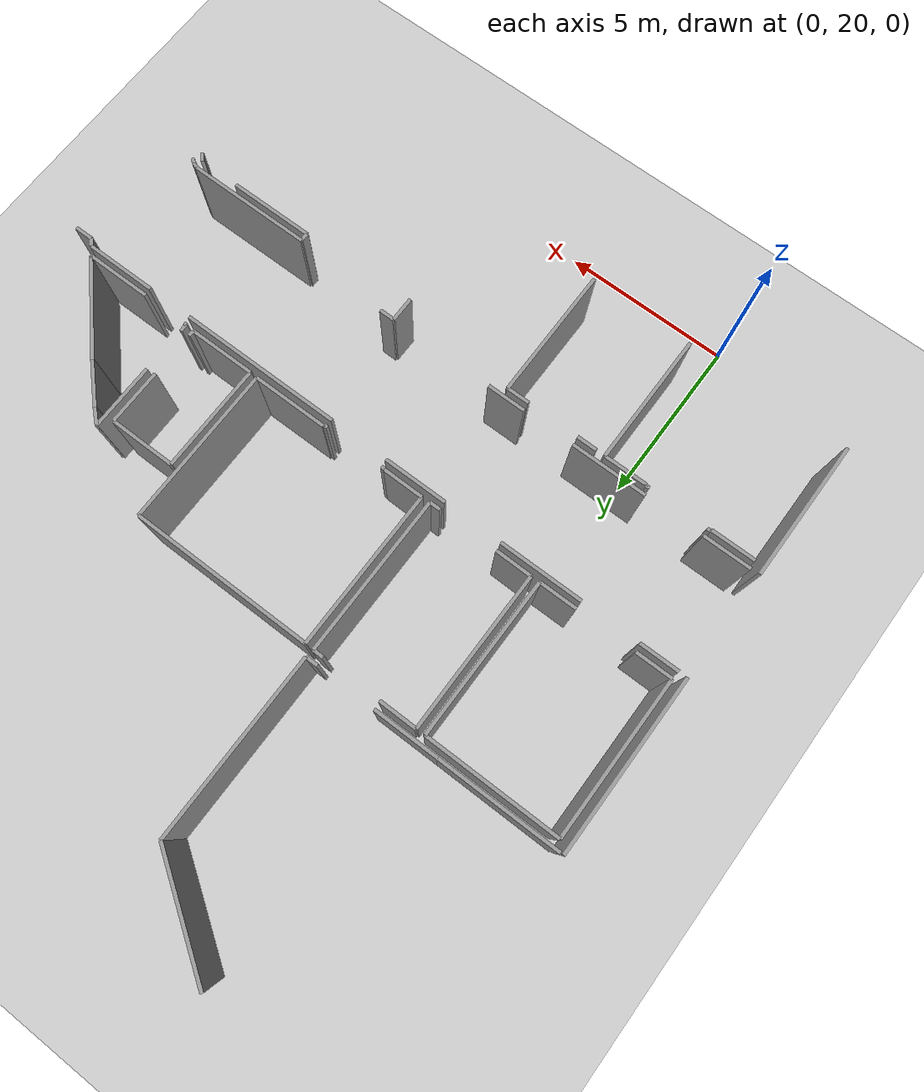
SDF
<sdf version="1.6">
 <world name="default">
  <model name="ground_plane">
   <static>1</static>
   <link name="link">
    <collision name="collision">
     <geometry><plane><normal>0 0 1</normal><size>100 100</size></plane></geometry>
     <surface><friction><ode><mu>100</mu><mu2>50</mu2></ode></friction></surface>
    </collision>
    <visual name="visual">
     <cast_shadows>0</cast_shadows>
     <geometry><plane><normal>0 0 1</normal><size>100 100</size></plane></geometry>
     <material>
      <script><uri>file://media/materials/scripts/gazebo.material</uri><name>Gazebo/Grey</name></script>
     </material>
    </visual>
   </link>
  </model>
  <model name="50041193">
   <static>1</static>
   <link name="Wall_68">
    <collision name="Wall_68_Collision">
     <geometry><box><size>3.57111085694 0.1 2.5</size></box></geometry>
     <pose>1.78555542847 0 1.25 0 0 0</pose>
    </collision>
    <visual name="Wall_68_Visual">
     <pose>1.78555542847 0 1.25 0 0 0</pose>
     <geometry><box><size>3.57111085694 0.1 2.5</size></box></geometry>
     <material>
      <script><uri>file://media/materials/scripts/gazebo.material</uri><name>Gazebo/Grey</name></script>
      <ambient>1 1 1 1</ambient>
     </material>
    </visual>
    <pose>31.2014691118 -19.0732268354 0 0 0 3.14159265359</pose>
   </link>
   <link name="Wall_69">
    <collision name="Wall_69_Collision">
     <geometry><box><size>3.51613490882 0.1 2.5</size></box></geometry>
     <pose>1.75806745441 0 1.25 0 0 0</pose>
    </collision>
    <visual name="Wall_69_Visual">
     <pose>1.75806745441 0 1.25 0 0 0</pose>
     <geometry><box><size>3.51613490882 0.1 2.5</size></box></geometry>
     <material>
      <script><uri>file://media/materials/scripts/gazebo.material</uri><name>Gazebo/Grey</name></script>
      <ambient>1 1 1 1</ambient>
     </material>
    </visual>
    <pose>32.2996174718 -11.7225844167 0 0 0 -0.59304491458</pose>
   </link>
   <link name="Wall_70">
    <collision name="Wall_70_Collision">
     <geometry><box><size>5.38157510135 0.1 2.5</size></box></geometry>
     <pose>2.69078755068 0 1.25 0 0 0</pose>
    </collision>
    <visual name="Wall_70_Visual">
     <pose>2.69078755068 0 1.25 0 0 0</pose>
     <geometry><box><size>5.38157510135 0.1 2.5</size></box></geometry>
     <material>
      <script><uri>file://media/materials/scripts/gazebo.material</uri><name>Gazebo/Grey</name></script>
      <ambient>1 1 1 1</ambient>
     </material>
    </visual>
    <pose>35.2153468807 -13.6877120744 0 0 0 -1.57079632679</pose>
   </link>
   <link name="Wall_71">
    <collision name="Wall_71_Collision">
     <geometry><box><size>0.359525715811 0.1 2.5</size></box></geometry>
     <pose>0.179762857905 0 1.25 0 0 0</pose>
    </collision>
    <visual name="Wall_71_Visual">
     <pose>0.179762857905 0 1.25 0 0 0</pose>
     <geometry><box><size>0.359525715811 0.1 2.5</size></box></geometry>
     <material>
      <script><uri>file://media/materials/scripts/gazebo.material</uri><name>Gazebo/Grey</name></script>
      <ambient>1 1 1 1</ambient>
     </material>
    </visual>
    <pose>35.2153468807 -19.0692871758 0 0 0 3.14159265359</pose>
   </link>
   <link name="Wall_72">
    <collision name="Wall_72_Collision">
     <geometry><box><size>1.91645784734 0.1 2.5</size></box></geometry>
     <pose>0.95822892367 0 1.25 0 0 0</pose>
    </collision>
    <visual name="Wall_72_Visual">
     <pose>0.95822892367 0 1.25 0 0 0</pose>
     <geometry><box><size>1.91645784734 0.1 2.5</size></box></geometry>
     <material>
      <script><uri>file://media/materials/scripts/gazebo.material</uri><name>Gazebo/Grey</name></script>
      <ambient>1 1 1 1</ambient>
     </material>
    </visual>
    <pose>33.1179229098 -19.0692871758 0 0 0 -3.13953695357</pose>
   </link>
   <link name="Wall_80">
    <collision name="Wall_80_Collision">
     <geometry><box><size>5.17391691131 0.1 2.5</size></box></geometry>
     <pose>2.58695845565 0 1.25 0 0 0</pose>
    </collision>
    <visual name="Wall_80_Visual">
     <pose>2.58695845565 0 1.25 0 0 0</pose>
     <geometry><box><size>5.17391691131 0.1 2.5</size></box></geometry>
     <material>
      <script><uri>file://media/materials/scripts/gazebo.material</uri><name>Gazebo/Grey</name></script>
      <ambient>1 1 1 1</ambient>
     </material>
    </visual>
    <pose>27.5481337451 -19.0676350604 0 0 0 -1.57079632679</pose>
   </link>
   <link name="Wall_81">
    <collision name="Wall_81_Collision">
     <geometry><box><size>4.1295258429 0.1 2.5</size></box></geometry>
     <pose>2.06476292145 0 1.25 0 0 0</pose>
    </collision>
    <visual name="Wall_81_Visual">
     <pose>2.06476292145 0 1.25 0 0 0</pose>
     <geometry><box><size>4.1295258429 0.1 2.5</size></box></geometry>
     <material>
      <script><uri>file://media/materials/scripts/gazebo.material</uri><name>Gazebo/Grey</name></script>
      <ambient>1 1 1 1</ambient>
     </material>
    </visual>
    <pose>27.5481337451 -27.4582205447 0 0 0 -1.57079632679</pose>
   </link>
   <link name="Wall_163">
    <collision name="Wall_163_Collision">
     <geometry><box><size>0.440860625008 0.1 2.5</size></box></geometry>
     <pose>0.220430312504 0 1.25 0 0 0</pose>
    </collision>
    <visual name="Wall_163_Visual">
     <pose>0.220430312504 0 1.25 0 0 0</pose>
     <geometry><box><size>0.440860625008 0.1 2.5</size></box></geometry>
     <material>
      <script><uri>file://media/materials/scripts/gazebo.material</uri><name>Gazebo/Grey</name></script>
      <ambient>1 1 1 1</ambient>
     </material>
    </visual>
    <pose>39.4268430618 -27.4289908117 0 0 0 3.14159265359</pose>
   </link>
   <link name="Wall_164">
    <collision name="Wall_164_Collision">
     <geometry><box><size>0.730234981636 0.1 2.5</size></box></geometry>
     <pose>0.365117490818 0 1.25 0 0 0</pose>
    </collision>
    <visual name="Wall_164_Visual">
     <pose>0.365117490818 0 1.25 0 0 0</pose>
     <geometry><box><size>0.730234981636 0.1 2.5</size></box></geometry>
     <material>
      <script><uri>file://media/materials/scripts/gazebo.material</uri><name>Gazebo/Grey</name></script>
      <ambient>1 1 1 1</ambient>
     </material>
    </visual>
    <pose>38.9859824367 -27.4289908117 0 0 0 -1.57079632679</pose>
   </link>
   <link name="Wall_168">
    <collision name="Wall_168_Collision">
     <geometry><box><size>1.14237421683 0.1 2.5</size></box></geometry>
     <pose>0.571187108417 0 1.25 0 0 0</pose>
    </collision>
    <visual name="Wall_168_Visual">
     <pose>0.571187108417 0 1.25 0 0 0</pose>
     <geometry><box><size>1.14237421683 0.1 2.5</size></box></geometry>
     <material>
      <script><uri>file://media/materials/scripts/gazebo.material</uri><name>Gazebo/Grey</name></script>
      <ambient>1 1 1 1</ambient>
     </material>
    </visual>
    <pose>35.8745409026 -27.4324221282 0 0 0 3.14159265359</pose>
   </link>
   <link name="Wall_169">
    <collision name="Wall_169_Collision">
     <geometry><box><size>2.25462910011 0.1 2.5</size></box></geometry>
     <pose>1.12731455005 0 1.25 0 0 0</pose>
    </collision>
    <visual name="Wall_169_Visual">
     <pose>1.12731455005 0 1.25 0 0 0</pose>
     <geometry><box><size>2.25462910011 0.1 2.5</size></box></geometry>
     <material>
      <script><uri>file://media/materials/scripts/gazebo.material</uri><name>Gazebo/Grey</name></script>
      <ambient>1 1 1 1</ambient>
     </material>
    </visual>
    <pose>33.2052308513 -27.4324221282 0 0 0 3.14159265359</pose>
   </link>
   <link name="Wall_170">
    <collision name="Wall_170_Collision">
     <geometry><box><size>1.41675244958 0.1 2.5</size></box></geometry>
     <pose>0.708376224789 0 1.25 0 0 0</pose>
    </collision>
    <visual name="Wall_170_Visual">
     <pose>0.708376224789 0 1.25 0 0 0</pose>
     <geometry><box><size>1.41675244958 0.1 2.5</size></box></geometry>
     <material>
      <script><uri>file://media/materials/scripts/gazebo.material</uri><name>Gazebo/Grey</name></script>
      <ambient>1 1 1 1</ambient>
     </material>
    </visual>
    <pose>29.2086367507 -27.4324221282 0 0 0 3.14159265359</pose>
   </link>
   <link name="Wall_171">
    <collision name="Wall_171_Collision">
     <geometry><box><size>1.15432028162 0.1 2.5</size></box></geometry>
     <pose>0.577160140811 0 1.25 0 0 0</pose>
    </collision>
    <visual name="Wall_171_Visual">
     <pose>0.577160140811 0 1.25 0 0 0</pose>
     <geometry><box><size>1.15432028162 0.1 2.5</size></box></geometry>
     <material>
      <script><uri>file://media/materials/scripts/gazebo.material</uri><name>Gazebo/Grey</name></script>
      <ambient>1 1 1 1</ambient>
     </material>
    </visual>
    <pose>27.7918843011 -24.2320205371 0 0 0 0.0</pose>
   </link>
   <link name="Wall_172">
    <collision name="Wall_172_Collision">
     <geometry><box><size>2.4696582663 0.1 2.5</size></box></geometry>
     <pose>1.23482913315 0 1.25 0 0 0</pose>
    </collision>
    <visual name="Wall_172_Visual">
     <pose>1.23482913315 0 1.25 0 0 0</pose>
     <geometry><box><size>2.4696582663 0.1 2.5</size></box></geometry>
     <material>
      <script><uri>file://media/materials/scripts/gazebo.material</uri><name>Gazebo/Grey</name></script>
      <ambient>1 1 1 1</ambient>
     </material>
    </visual>
    <pose>30.6702504861 -24.2320205371 0 0 0 0.0</pose>
   </link>
   <link name="Wall_173">
    <collision name="Wall_173_Collision">
     <geometry><box><size>1.88608029281 0.1 2.5</size></box></geometry>
     <pose>0.943040146403 0 1.25 0 0 0</pose>
    </collision>
    <visual name="Wall_173_Visual">
     <pose>0.943040146403 0 1.25 0 0 0</pose>
     <geometry><box><size>1.88608029281 0.1 2.5</size></box></geometry>
     <material>
      <script><uri>file://media/materials/scripts/gazebo.material</uri><name>Gazebo/Grey</name></script>
      <ambient>1 1 1 1</ambient>
     </material>
    </visual>
    <pose>34.8771715785 -24.2320205371 0 0 0 0.0</pose>
   </link>
   <link name="Wall_174">
    <collision name="Wall_174_Collision">
     <geometry><box><size>4.82621017449 0.1 2.5</size></box></geometry>
     <pose>2.41310508724 0 1.25 0 0 0</pose>
    </collision>
    <visual name="Wall_174_Visual">
     <pose>2.41310508724 0 1.25 0 0 0</pose>
     <geometry><box><size>4.82621017449 0.1 2.5</size></box></geometry>
     <material>
      <script><uri>file://media/materials/scripts/gazebo.material</uri><name>Gazebo/Grey</name></script>
      <ambient>1 1 1 1</ambient>
     </material>
    </visual>
    <pose>38.5116982475 -24.2320205371 0 0 0 0.0</pose>
   </link>
   <link name="Wall_175">
    <collision name="Wall_175_Collision">
     <geometry><box><size>2.0923405391 0.1 2.5</size></box></geometry>
     <pose>1.04617026955 0 1.25 0 0 0</pose>
    </collision>
    <visual name="Wall_175_Visual">
     <pose>1.04617026955 0 1.25 0 0 0</pose>
     <geometry><box><size>2.0923405391 0.1 2.5</size></box></geometry>
     <material>
      <script><uri>file://media/materials/scripts/gazebo.material</uri><name>Gazebo/Grey</name></script>
      <ambient>1 1 1 1</ambient>
     </material>
    </visual>
    <pose>44.6862887135 -24.2320205371 0 0 0 0.0</pose>
   </link>
   <link name="Wall_176">
    <collision name="Wall_176_Collision">
     <geometry><box><size>0.234724574616 0.1 2.5</size></box></geometry>
     <pose>0.117362287308 0 1.25 0 0 0</pose>
    </collision>
    <visual name="Wall_176_Visual">
     <pose>0.117362287308 0 1.25 0 0 0</pose>
     <geometry><box><size>0.234724574616 0.1 2.5</size></box></geometry>
     <material>
      <script><uri>file://media/materials/scripts/gazebo.material</uri><name>Gazebo/Grey</name></script>
      <ambient>1 1 1 1</ambient>
     </material>
    </visual>
    <pose>46.7786292526 -24.2320205371 0 0 0 -0.813349518398</pose>
   </link>
   <link name="Wall_177">
    <collision name="Wall_177_Collision">
     <geometry><box><size>0.527151880234 0.1 2.5</size></box></geometry>
     <pose>0.263575940117 0 1.25 0 0 0</pose>
    </collision>
    <visual name="Wall_177_Visual">
     <pose>0.263575940117 0 1.25 0 0 0</pose>
     <geometry><box><size>0.527151880234 0.1 2.5</size></box></geometry>
     <material>
      <script><uri>file://media/materials/scripts/gazebo.material</uri><name>Gazebo/Grey</name></script>
      <ambient>1 1 1 1</ambient>
     </material>
    </visual>
    <pose>46.9399011273 -24.4025696748 0 0 0 0.0</pose>
   </link>
   <link name="Wall_192">
    <collision name="Wall_192_Collision">
     <geometry><box><size>0.154842086468 0.1 2.5</size></box></geometry>
     <pose>0.0774210432339 0 1.25 0 0 0</pose>
    </collision>
    <visual name="Wall_192_Visual">
     <pose>0.0774210432339 0 1.25 0 0 0</pose>
     <geometry><box><size>0.154842086468 0.1 2.5</size></box></geometry>
     <material>
      <script><uri>file://media/materials/scripts/gazebo.material</uri><name>Gazebo/Grey</name></script>
      <ambient>1 1 1 1</ambient>
     </material>
    </visual>
    <pose>46.3565773254 -27.9286921601 0 0 0 2.50121037907</pose>
   </link>
   <link name="Wall_193">
    <collision name="Wall_193_Collision">
     <geometry><box><size>0.152896677229 0.1 2.5</size></box></geometry>
     <pose>0.0764483386147 0 1.25 0 0 0</pose>
    </collision>
    <visual name="Wall_193_Visual">
     <pose>0.0764483386147 0 1.25 0 0 0</pose>
     <geometry><box><size>0.152896677229 0.1 2.5</size></box></geometry>
     <material>
      <script><uri>file://media/materials/scripts/gazebo.material</uri><name>Gazebo/Grey</name></script>
      <ambient>1 1 1 1</ambient>
     </material>
    </visual>
    <pose>46.232414503 -27.8361737009 0 0 0 2.71847343526</pose>
   </link>
   <link name="Wall_194">
    <collision name="Wall_194_Collision">
     <geometry><box><size>3.70912603098 0.1 2.5</size></box></geometry>
     <pose>1.85456301549 0 1.25 0 0 0</pose>
    </collision>
    <visual name="Wall_194_Visual">
     <pose>1.85456301549 0 1.25 0 0 0</pose>
     <geometry><box><size>3.70912603098 0.1 2.5</size></box></geometry>
     <material>
      <script><uri>file://media/materials/scripts/gazebo.material</uri><name>Gazebo/Grey</name></script>
      <ambient>1 1 1 1</ambient>
     </material>
    </visual>
    <pose>46.0930013852 -27.7733933178 0 0 0 3.14159265359</pose>
   </link>
   <link name="Wall_195">
    <collision name="Wall_195_Collision">
     <geometry><box><size>0.238667124176 0.1 2.5</size></box></geometry>
     <pose>0.119333562088 0 1.25 0 0 0</pose>
    </collision>
    <visual name="Wall_195_Visual">
     <pose>0.119333562088 0 1.25 0 0 0</pose>
     <geometry><box><size>0.238667124176 0.1 2.5</size></box></geometry>
     <material>
      <script><uri>file://media/materials/scripts/gazebo.material</uri><name>Gazebo/Grey</name></script>
      <ambient>1 1 1 1</ambient>
     </material>
    </visual>
    <pose>42.3838753543 -27.7733933178 0 0 0 -1.57079632679</pose>
   </link>
   <link name="Wall_196">
    <collision name="Wall_196_Collision">
     <geometry><box><size>2.48935656462 0.1 2.5</size></box></geometry>
     <pose>1.24467828231 0 1.25 0 0 0</pose>
    </collision>
    <visual name="Wall_196_Visual">
     <pose>1.24467828231 0 1.25 0 0 0</pose>
     <geometry><box><size>2.48935656462 0.1 2.5</size></box></geometry>
     <material>
      <script><uri>file://media/materials/scripts/gazebo.material</uri><name>Gazebo/Grey</name></script>
      <ambient>1 1 1 1</ambient>
     </material>
    </visual>
    <pose>42.3838753543 -28.012060442 0 0 0 0.0</pose>
   </link>
   <link name="Wall_219">
    <collision name="Wall_219_Collision">
     <geometry><box><size>4.68171362487 0.1 2.5</size></box></geometry>
     <pose>2.34085681243 0 1.25 0 0 0</pose>
    </collision>
    <visual name="Wall_219_Visual">
     <pose>2.34085681243 0 1.25 0 0 0</pose>
     <geometry><box><size>4.68171362487 0.1 2.5</size></box></geometry>
     <material>
      <script><uri>file://media/materials/scripts/gazebo.material</uri><name>Gazebo/Grey</name></script>
      <ambient>1 1 1 1</ambient>
     </material>
    </visual>
    <pose>32.032737301 -23.9894137532 0 0 0 1.57079632679</pose>
   </link>
   <link name="Wall_220">
    <collision name="Wall_220_Collision">
     <geometry><box><size>1.11072985372 0.1 2.5</size></box></geometry>
     <pose>0.555364926862 0 1.25 0 0 0</pose>
    </collision>
    <visual name="Wall_220_Visual">
     <pose>0.555364926862 0 1.25 0 0 0</pose>
     <geometry><box><size>1.11072985372 0.1 2.5</size></box></geometry>
     <material>
      <script><uri>file://media/materials/scripts/gazebo.material</uri><name>Gazebo/Grey</name></script>
      <ambient>1 1 1 1</ambient>
     </material>
    </visual>
    <pose>32.032737301 -19.3077001284 0 0 0 0.0</pose>
   </link>
   <link name="Wall_221">
    <collision name="Wall_221_Collision">
     <geometry><box><size>0.303226708351 0.1 2.5</size></box></geometry>
     <pose>0.151613354175 0 1.25 0 0 0</pose>
    </collision>
    <visual name="Wall_221_Visual">
     <pose>0.151613354175 0 1.25 0 0 0</pose>
     <geometry><box><size>0.303226708351 0.1 2.5</size></box></geometry>
     <material>
      <script><uri>file://media/materials/scripts/gazebo.material</uri><name>Gazebo/Grey</name></script>
      <ambient>1 1 1 1</ambient>
     </material>
    </visual>
    <pose>34.8752652916 -19.3077001284 0 0 0 0.0</pose>
   </link>
   <link name="Wall_222">
    <collision name="Wall_222_Collision">
     <geometry><box><size>4.69188048852 0.1 2.5</size></box></geometry>
     <pose>2.34594024426 0 1.25 0 0 0</pose>
    </collision>
    <visual name="Wall_222_Visual">
     <pose>2.34594024426 0 1.25 0 0 0</pose>
     <geometry><box><size>4.69188048852 0.1 2.5</size></box></geometry>
     <material>
      <script><uri>file://media/materials/scripts/gazebo.material</uri><name>Gazebo/Grey</name></script>
      <ambient>1 1 1 1</ambient>
     </material>
    </visual>
    <pose>35.1784919999 -19.3077001284 0 0 0 -1.57079632679</pose>
   </link>
   <link name="Wall_223">
    <collision name="Wall_223_Collision">
     <geometry><box><size>0.323306264059 0.1 2.5</size></box></geometry>
     <pose>0.161653132029 0 1.25 0 0 0</pose>
    </collision>
    <visual name="Wall_223_Visual">
     <pose>0.161653132029 0 1.25 0 0 0</pose>
     <geometry><box><size>0.323306264059 0.1 2.5</size></box></geometry>
     <material>
      <script><uri>file://media/materials/scripts/gazebo.material</uri><name>Gazebo/Grey</name></script>
      <ambient>1 1 1 1</ambient>
     </material>
    </visual>
    <pose>35.1784919999 -23.9995806169 0 0 0 3.14159265359</pose>
   </link>
   <link name="Wall_224">
    <collision name="Wall_224_Collision">
     <geometry><box><size>1.07277937823 0.1 2.5</size></box></geometry>
     <pose>0.536389689116 0 1.25 0 0 0</pose>
    </collision>
    <visual name="Wall_224_Visual">
     <pose>0.536389689116 0 1.25 0 0 0</pose>
     <geometry><box><size>1.07277937823 0.1 2.5</size></box></geometry>
     <material>
      <script><uri>file://media/materials/scripts/gazebo.material</uri><name>Gazebo/Grey</name></script>
      <ambient>1 1 1 1</ambient>
     </material>
    </visual>
    <pose>33.1054685018 -23.9995806169 0 0 0 3.13211538729</pose>
   </link>
   <link name="Wall_225">
    <collision name="Wall_225_Collision">
     <geometry><box><size>4.67739270782 0.1 2.5</size></box></geometry>
     <pose>2.33869635391 0 1.25 0 0 0</pose>
    </collision>
    <visual name="Wall_225_Visual">
     <pose>2.33869635391 0 1.25 0 0 0</pose>
     <geometry><box><size>4.67739270782 0.1 2.5</size></box></geometry>
     <material>
      <script><uri>file://media/materials/scripts/gazebo.material</uri><name>Gazebo/Grey</name></script>
      <ambient>1 1 1 1</ambient>
     </material>
    </visual>
    <pose>27.8284850102 -23.9942430135 0 0 0 1.57079632679</pose>
   </link>
   <link name="Wall_226">
    <collision name="Wall_226_Collision">
     <geometry><box><size>3.94626812561 0.1 2.5</size></box></geometry>
     <pose>1.97313406281 0 1.25 0 0 0</pose>
    </collision>
    <visual name="Wall_226_Visual">
     <pose>1.97313406281 0 1.25 0 0 0</pose>
     <geometry><box><size>3.94626812561 0.1 2.5</size></box></geometry>
     <material>
      <script><uri>file://media/materials/scripts/gazebo.material</uri><name>Gazebo/Grey</name></script>
      <ambient>1 1 1 1</ambient>
     </material>
    </visual>
    <pose>27.8284850102 -19.3168503056 0 0 0 0.0</pose>
   </link>
   <link name="Wall_227">
    <collision name="Wall_227_Collision">
     <geometry><box><size>4.6806969385 0.1 2.5</size></box></geometry>
     <pose>2.34034846925 0 1.25 0 0 0</pose>
    </collision>
    <visual name="Wall_227_Visual">
     <pose>2.34034846925 0 1.25 0 0 0</pose>
     <geometry><box><size>4.6806969385 0.1 2.5</size></box></geometry>
     <material>
      <script><uri>file://media/materials/scripts/gazebo.material</uri><name>Gazebo/Grey</name></script>
      <ambient>1 1 1 1</ambient>
     </material>
    </visual>
    <pose>31.7747531358 -19.3168503056 0 0 0 -1.57079632679</pose>
   </link>
   <link name="Wall_228">
    <collision name="Wall_228_Collision">
     <geometry><box><size>1.10793396622 0.1 2.5</size></box></geometry>
     <pose>0.55396698311 0 1.25 0 0 0</pose>
    </collision>
    <visual name="Wall_228_Visual">
     <pose>0.55396698311 0 1.25 0 0 0</pose>
     <geometry><box><size>1.10793396622 0.1 2.5</size></box></geometry>
     <material>
      <script><uri>file://media/materials/scripts/gazebo.material</uri><name>Gazebo/Grey</name></script>
      <ambient>1 1 1 1</ambient>
     </material>
    </visual>
    <pose>31.7747531358 -23.9975472441 0 0 0 3.14159265359</pose>
   </link>
   <link name="Wall_229">
    <collision name="Wall_229_Collision">
     <geometry><box><size>1.07019458585 0.1 2.5</size></box></geometry>
     <pose>0.535097292924 0 1.25 0 0 0</pose>
    </collision>
    <visual name="Wall_229_Visual">
     <pose>0.535097292924 0 1.25 0 0 0</pose>
     <geometry><box><size>1.07019458585 0.1 2.5</size></box></geometry>
     <material>
      <script><uri>file://media/materials/scripts/gazebo.material</uri><name>Gazebo/Grey</name></script>
      <ambient>1 1 1 1</ambient>
     </material>
    </visual>
    <pose>28.8986744952 -23.9975472441 0 0 0 3.1385051441</pose>
   </link>
   <link name="Wall_230">
    <collision name="Wall_230_Collision">
     <geometry><box><size>4.67408847713 0.1 2.5</size></box></geometry>
     <pose>2.33704423857 0 1.25 0 0 0</pose>
    </collision>
    <visual name="Wall_230_Visual">
     <pose>2.33704423857 0 1.25 0 0 0</pose>
     <geometry><box><size>4.67408847713 0.1 2.5</size></box></geometry>
     <material>
      <script><uri>file://media/materials/scripts/gazebo.material</uri><name>Gazebo/Grey</name></script>
      <ambient>1 1 1 1</ambient>
     </material>
    </visual>
    <pose>35.4282155883 -23.9867449515 0 0 0 1.57079632679</pose>
   </link>
   <link name="Wall_231">
    <collision name="Wall_231_Collision">
     <geometry><box><size>5.37750835589 0.1 2.5</size></box></geometry>
     <pose>2.68875417795 0 1.25 0 0 0</pose>
    </collision>
    <visual name="Wall_231_Visual">
     <pose>2.68875417795 0 1.25 0 0 0</pose>
     <geometry><box><size>5.37750835589 0.1 2.5</size></box></geometry>
     <material>
      <script><uri>file://media/materials/scripts/gazebo.material</uri><name>Gazebo/Grey</name></script>
      <ambient>1 1 1 1</ambient>
     </material>
    </visual>
    <pose>35.4282155883 -19.3126564744 0 0 0 0.0</pose>
   </link>
   <link name="Wall_232">
    <collision name="Wall_232_Collision">
     <geometry><box><size>4.66404869928 0.1 2.5</size></box></geometry>
     <pose>2.33202434964 0 1.25 0 0 0</pose>
    </collision>
    <visual name="Wall_232_Visual">
     <pose>2.33202434964 0 1.25 0 0 0</pose>
     <geometry><box><size>4.66404869928 0.1 2.5</size></box></geometry>
     <material>
      <script><uri>file://media/materials/scripts/gazebo.material</uri><name>Gazebo/Grey</name></script>
      <ambient>1 1 1 1</ambient>
     </material>
    </visual>
    <pose>40.8057239442 -19.3126564744 0 0 0 -1.57079632679</pose>
   </link>
   <link name="Wall_233">
    <collision name="Wall_233_Collision">
     <geometry><box><size>2.20481146822 0.1 2.5</size></box></geometry>
     <pose>1.10240573411 0 1.25 0 0 0</pose>
    </collision>
    <visual name="Wall_233_Visual">
     <pose>1.10240573411 0 1.25 0 0 0</pose>
     <geometry><box><size>2.20481146822 0.1 2.5</size></box></geometry>
     <material>
      <script><uri>file://media/materials/scripts/gazebo.material</uri><name>Gazebo/Grey</name></script>
      <ambient>1 1 1 1</ambient>
     </material>
    </visual>
    <pose>40.8057239442 -23.9767051737 0 0 0 3.14159265359</pose>
   </link>
   <link name="Wall_234">
    <collision name="Wall_234_Collision">
     <geometry><box><size>0.0326610494745 0.1 2.5</size></box></geometry>
     <pose>0.0163305247373 0 1.25 0 0 0</pose>
    </collision>
    <visual name="Wall_234_Visual">
     <pose>0.0163305247373 0 1.25 0 0 0</pose>
     <geometry><box><size>0.0326610494745 0.1 2.5</size></box></geometry>
     <material>
      <script><uri>file://media/materials/scripts/gazebo.material</uri><name>Gazebo/Grey</name></script>
      <ambient>1 1 1 1</ambient>
     </material>
    </visual>
    <pose>38.600912476 -23.9767051737 0 0 0 -1.57079632679</pose>
   </link>
   <link name="Wall_235">
    <collision name="Wall_235_Collision">
     <geometry><box><size>0.10535412457 0.1 2.5</size></box></geometry>
     <pose>0.0526770622848 0 1.25 0 0 0</pose>
    </collision>
    <visual name="Wall_235_Visual">
     <pose>0.0526770622848 0 1.25 0 0 0</pose>
     <geometry><box><size>0.10535412457 0.1 2.5</size></box></geometry>
     <material>
      <script><uri>file://media/materials/scripts/gazebo.material</uri><name>Gazebo/Grey</name></script>
      <ambient>1 1 1 1</ambient>
     </material>
    </visual>
    <pose>38.600912476 -24.0093662231 0 0 0 3.14159265359</pose>
   </link>
   <link name="Wall_236">
    <collision name="Wall_236_Collision">
     <geometry><box><size>0.109293784234 0.1 2.5</size></box></geometry>
     <pose>0.0546468921169 0 1.25 0 0 0</pose>
    </collision>
    <visual name="Wall_236_Visual">
     <pose>0.0546468921169 0 1.25 0 0 0</pose>
     <geometry><box><size>0.109293784234 0.1 2.5</size></box></geometry>
     <material>
      <script><uri>file://media/materials/scripts/gazebo.material</uri><name>Gazebo/Grey</name></script>
      <ambient>1 1 1 1</ambient>
     </material>
    </visual>
    <pose>36.7346575673 -24.0093662231 0 0 0 3.14159265359</pose>
   </link>
   <link name="Wall_237">
    <collision name="Wall_237_Collision">
     <geometry><box><size>0.0155044670657 0.1 2.5</size></box></geometry>
     <pose>0.00775223353286 0 1.25 0 0 0</pose>
    </collision>
    <visual name="Wall_237_Visual">
     <pose>0.00775223353286 0 1.25 0 0 0</pose>
     <geometry><box><size>0.0155044670657 0.1 2.5</size></box></geometry>
     <material>
      <script><uri>file://media/materials/scripts/gazebo.material</uri><name>Gazebo/Grey</name></script>
      <ambient>1 1 1 1</ambient>
     </material>
    </visual>
    <pose>36.6253637831 -24.0093662231 0 0 0 1.57079632679</pose>
   </link>
   <link name="Wall_238">
    <collision name="Wall_238_Collision">
     <geometry><box><size>1.19716934854 0.1 2.5</size></box></geometry>
     <pose>0.598584674272 0 1.25 0 0 0</pose>
    </collision>
    <visual name="Wall_238_Visual">
     <pose>0.598584674272 0 1.25 0 0 0</pose>
     <geometry><box><size>1.19716934854 0.1 2.5</size></box></geometry>
     <material>
      <script><uri>file://media/materials/scripts/gazebo.material</uri><name>Gazebo/Grey</name></script>
      <ambient>1 1 1 1</ambient>
     </material>
    </visual>
    <pose>36.6253637831 -23.9938617561 0 0 0 3.13564792532</pose>
   </link>
   <link name="Wall_240">
    <collision name="Wall_240_Collision">
     <geometry><box><size>1.29691054431 0.1 2.5</size></box></geometry>
     <pose>0.648455272154 0 1.25 0 0 0</pose>
    </collision>
    <visual name="Wall_240_Visual">
     <pose>0.648455272154 0 1.25 0 0 0</pose>
     <geometry><box><size>1.29691054431 0.1 2.5</size></box></geometry>
     <material>
      <script><uri>file://media/materials/scripts/gazebo.material</uri><name>Gazebo/Grey</name></script>
      <ambient>1 1 1 1</ambient>
     </material>
    </visual>
    <pose>27.8256891227 -27.674393483 0 0 0 0.0</pose>
   </link>
   <link name="Wall_241">
    <collision name="Wall_241_Collision">
     <geometry><box><size>0.0288484756059 0.1 2.5</size></box></geometry>
     <pose>0.0144242378029 0 1.25 0 0 0</pose>
    </collision>
    <visual name="Wall_241_Visual">
     <pose>0.0144242378029 0 1.25 0 0 0</pose>
     <geometry><box><size>0.0288484756059 0.1 2.5</size></box></geometry>
     <material>
      <script><uri>file://media/materials/scripts/gazebo.material</uri><name>Gazebo/Grey</name></script>
      <ambient>1 1 1 1</ambient>
     </material>
    </visual>
    <pose>29.122599667 -27.674393483 0 0 0 1.57079632679</pose>
   </link>
   <link name="Wall_242">
    <collision name="Wall_242_Collision">
     <geometry><box><size>0.108404183664 0.1 2.5</size></box></geometry>
     <pose>0.0542020918322 0 1.25 0 0 0</pose>
    </collision>
    <visual name="Wall_242_Visual">
     <pose>0.0542020918322 0 1.25 0 0 0</pose>
     <geometry><box><size>0.108404183664 0.1 2.5</size></box></geometry>
     <material>
      <script><uri>file://media/materials/scripts/gazebo.material</uri><name>Gazebo/Grey</name></script>
      <ambient>1 1 1 1</ambient>
     </material>
    </visual>
    <pose>29.122599667 -27.6455450074 0 0 0 0.0</pose>
   </link>
   <link name="Wall_243">
    <collision name="Wall_243_Collision">
     <geometry><box><size>0.105099952978 0.1 2.5</size></box></geometry>
     <pose>0.0525499764891 0 1.25 0 0 0</pose>
    </collision>
    <visual name="Wall_243_Visual">
     <pose>0.0525499764891 0 1.25 0 0 0</pose>
     <geometry><box><size>0.105099952978 0.1 2.5</size></box></geometry>
     <material>
      <script><uri>file://media/materials/scripts/gazebo.material</uri><name>Gazebo/Grey</name></script>
      <ambient>1 1 1 1</ambient>
     </material>
    </visual>
    <pose>30.9817377712 -27.6455450074 0 0 0 0.0</pose>
   </link>
   <link name="Wall_244">
    <collision name="Wall_244_Collision">
     <geometry><box><size>0.0274505318541 0.1 2.5</size></box></geometry>
     <pose>0.013725265927 0 1.25 0 0 0</pose>
    </collision>
    <visual name="Wall_244_Visual">
     <pose>0.013725265927 0 1.25 0 0 0</pose>
     <geometry><box><size>0.0274505318541 0.1 2.5</size></box></geometry>
     <material>
      <script><uri>file://media/materials/scripts/gazebo.material</uri><name>Gazebo/Grey</name></script>
      <ambient>1 1 1 1</ambient>
     </material>
    </visual>
    <pose>31.0868377241 -27.6455450074 0 0 0 -1.57079632679</pose>
   </link>
   <link name="Wall_245">
    <collision name="Wall_245_Collision">
     <geometry><box><size>1.28521865111 0.1 2.5</size></box></geometry>
     <pose>0.642609325556 0 1.25 0 0 0</pose>
    </collision>
    <visual name="Wall_245_Visual">
     <pose>0.642609325556 0 1.25 0 0 0</pose>
     <geometry><box><size>1.28521865111 0.1 2.5</size></box></geometry>
     <material>
      <script><uri>file://media/materials/scripts/gazebo.material</uri><name>Gazebo/Grey</name></script>
      <ambient>1 1 1 1</ambient>
     </material>
    </visual>
    <pose>31.0868377241 -27.6729955393 0 0 0 0.0</pose>
   </link>
   <link name="Wall_246">
    <collision name="Wall_246_Collision">
     <geometry><box><size>3.91386124773 0.1 2.5</size></box></geometry>
     <pose>1.95693062386 0 1.25 0 0 0</pose>
    </collision>
    <visual name="Wall_246_Visual">
     <pose>1.95693062386 0 1.25 0 0 0</pose>
     <geometry><box><size>3.91386124773 0.1 2.5</size></box></geometry>
     <material>
      <script><uri>file://media/materials/scripts/gazebo.material</uri><name>Gazebo/Grey</name></script>
      <ambient>1 1 1 1</ambient>
     </material>
    </visual>
    <pose>32.3720563753 -27.6729955393 0 0 0 -1.57079632679</pose>
   </link>
   <link name="Wall_250">
    <collision name="Wall_250_Collision">
     <geometry><box><size>0.592219807592 0.1 2.5</size></box></geometry>
     <pose>0.296109903796 0 1.25 0 0 0</pose>
    </collision>
    <visual name="Wall_250_Visual">
     <pose>0.296109903796 0 1.25 0 0 0</pose>
     <geometry><box><size>0.592219807592 0.1 2.5</size></box></geometry>
     <material>
      <script><uri>file://media/materials/scripts/gazebo.material</uri><name>Gazebo/Grey</name></script>
      <ambient>1 1 1 1</ambient>
     </material>
    </visual>
    <pose>32.6342343716 -27.674393483 0 0 0 0.0</pose>
   </link>
   <link name="Wall_251">
    <collision name="Wall_251_Collision">
     <geometry><box><size>0.673046373607 0.1 2.5</size></box></geometry>
     <pose>0.336523186803 0 1.25 0 0 0</pose>
    </collision>
    <visual name="Wall_251_Visual">
     <pose>0.336523186803 0 1.25 0 0 0</pose>
     <geometry><box><size>0.673046373607 0.1 2.5</size></box></geometry>
     <material>
      <script><uri>file://media/materials/scripts/gazebo.material</uri><name>Gazebo/Grey</name></script>
      <ambient>1 1 1 1</ambient>
     </material>
    </visual>
    <pose>34.7672423653 -27.674393483 0 0 0 0.0</pose>
   </link>
   <link name="Wall_252">
    <collision name="Wall_252_Collision">
     <geometry><box><size>3.9232655966 0.1 2.5</size></box></geometry>
     <pose>1.9616327983 0 1.25 0 0 0</pose>
    </collision>
    <visual name="Wall_252_Visual">
     <pose>1.9616327983 0 1.25 0 0 0</pose>
     <geometry><box><size>3.9232655966 0.1 2.5</size></box></geometry>
     <material>
      <script><uri>file://media/materials/scripts/gazebo.material</uri><name>Gazebo/Grey</name></script>
      <ambient>1 1 1 1</ambient>
     </material>
    </visual>
    <pose>35.4402887389 -27.674393483 0 0 0 -1.57079632679</pose>
   </link>
   <link name="Wall_262">
    <collision name="Wall_262_Collision">
     <geometry><box><size>0.244333671315 0.1 2.5</size></box></geometry>
     <pose>0.122166835658 0 1.25 0 0 0</pose>
    </collision>
    <visual name="Wall_262_Visual">
     <pose>0.122166835658 0 1.25 0 0 0</pose>
     <geometry><box><size>0.244333671315 0.1 2.5</size></box></geometry>
     <material>
      <script><uri>file://media/materials/scripts/gazebo.material</uri><name>Gazebo/Grey</name></script>
      <ambient>1 1 1 1</ambient>
     </material>
    </visual>
    <pose>46.088172125 -28.0273107375 0 0 0 -0.845752187854</pose>
   </link>
   <link name="Wall_268">
    <collision name="Wall_268_Collision">
     <geometry><box><size>3.16164042345 0.1 2.5</size></box></geometry>
     <pose>1.58082021172 0 1.25 0 0 0</pose>
    </collision>
    <visual name="Wall_268_Visual">
     <pose>1.58082021172 0 1.25 0 0 0</pose>
     <geometry><box><size>3.16164042345 0.1 2.5</size></box></geometry>
     <material>
      <script><uri>file://media/materials/scripts/gazebo.material</uri><name>Gazebo/Grey</name></script>
      <ambient>1 1 1 1</ambient>
     </material>
    </visual>
    <pose>41.0374013497 -23.990176268 0 0 0 1.57079632679</pose>
   </link>
   <link name="Wall_269">
    <collision name="Wall_269_Collision">
     <geometry><box><size>1.94670021732 0.1 2.5</size></box></geometry>
     <pose>0.973350108658 0 1.25 0 0 0</pose>
    </collision>
    <visual name="Wall_269_Visual">
     <pose>0.973350108658 0 1.25 0 0 0</pose>
     <geometry><box><size>1.94670021732 0.1 2.5</size></box></geometry>
     <material>
      <script><uri>file://media/materials/scripts/gazebo.material</uri><name>Gazebo/Grey</name></script>
      <ambient>1 1 1 1</ambient>
     </material>
    </visual>
    <pose>41.0374013497 -20.8285358445 0 0 0 0.0</pose>
   </link>
   <link name="Wall_270">
    <collision name="Wall_270_Collision">
     <geometry><box><size>1.64016927828 0.1 2.5</size></box></geometry>
     <pose>0.82008463914 0 1.25 0 0 0</pose>
    </collision>
    <visual name="Wall_270_Visual">
     <pose>0.82008463914 0 1.25 0 0 0</pose>
     <geometry><box><size>1.64016927828 0.1 2.5</size></box></geometry>
     <material>
      <script><uri>file://media/materials/scripts/gazebo.material</uri><name>Gazebo/Grey</name></script>
      <ambient>1 1 1 1</ambient>
     </material>
    </visual>
    <pose>42.984101567 -20.8285358445 0 0 0 -1.57079632679</pose>
   </link>
   <link name="Wall_271">
    <collision name="Wall_271_Collision">
     <geometry><box><size>0.172709596248 0.1 2.5</size></box></geometry>
     <pose>0.0863547981242 0 1.25 0 0 0</pose>
    </collision>
    <visual name="Wall_271_Visual">
     <pose>0.0863547981242 0 1.25 0 0 0</pose>
     <geometry><box><size>0.172709596248 0.1 2.5</size></box></geometry>
     <material>
      <script><uri>file://media/materials/scripts/gazebo.material</uri><name>Gazebo/Grey</name></script>
      <ambient>1 1 1 1</ambient>
     </material>
    </visual>
    <pose>42.984101567 -23.8174666718 0 0 0 -1.57079632679</pose>
   </link>
   <link name="Wall_272">
    <collision name="Wall_272_Collision">
     <geometry><box><size>1.94670021732 0.1 2.5</size></box></geometry>
     <pose>0.973350108658 0 1.25 0 0 0</pose>
    </collision>
    <visual name="Wall_272_Visual">
     <pose>0.973350108658 0 1.25 0 0 0</pose>
     <geometry><box><size>1.94670021732 0.1 2.5</size></box></geometry>
     <material>
      <script><uri>file://media/materials/scripts/gazebo.material</uri><name>Gazebo/Grey</name></script>
      <ambient>1 1 1 1</ambient>
     </material>
    </visual>
    <pose>42.984101567 -23.990176268 0 0 0 3.14159265359</pose>
   </link>
   <link name="Wall_273">
    <collision name="Wall_273_Collision">
     <geometry><box><size>0.505952111053 0.1 2.5</size></box></geometry>
     <pose>0.252976055526 0 1.25 0 0 0</pose>
    </collision>
    <visual name="Wall_273_Visual">
     <pose>0.252976055526 0 1.25 0 0 0</pose>
     <geometry><box><size>0.505952111053 0.1 2.5</size></box></geometry>
     <material>
      <script><uri>file://media/materials/scripts/gazebo.material</uri><name>Gazebo/Grey</name></script>
      <ambient>1 1 1 1</ambient>
     </material>
    </visual>
    <pose>43.2478045929 -20.4784144776 0 0 0 -0.742225007202</pose>
   </link>
   <link name="Wall_274">
    <collision name="Wall_274_Collision">
     <geometry><box><size>1.34072937103 0.1 2.5</size></box></geometry>
     <pose>0.670364685516 0 1.25 0 0 0</pose>
    </collision>
    <visual name="Wall_274_Visual">
     <pose>0.670364685516 0 1.25 0 0 0</pose>
     <geometry><box><size>1.34072937103 0.1 2.5</size></box></geometry>
     <material>
      <script><uri>file://media/materials/scripts/gazebo.material</uri><name>Gazebo/Grey</name></script>
      <ambient>1 1 1 1</ambient>
     </material>
    </visual>
    <pose>43.6206743172 -20.8204023536 0 0 0 -0.794848917609</pose>
   </link>
   <link name="Wall_275">
    <collision name="Wall_275_Collision">
     <geometry><box><size>3.02759307821 0.1 2.5</size></box></geometry>
     <pose>1.51379653911 0 1.25 0 0 0</pose>
    </collision>
    <visual name="Wall_275_Visual">
     <pose>1.51379653911 0 1.25 0 0 0</pose>
     <geometry><box><size>3.02759307821 0.1 2.5</size></box></geometry>
     <material>
      <script><uri>file://media/materials/scripts/gazebo.material</uri><name>Gazebo/Grey</name></script>
      <ambient>1 1 1 1</ambient>
     </material>
    </visual>
    <pose>44.5597112611 -21.7773583947 0 0 0 -0.831064040224</pose>
   </link>
   <link name="Wall_276">
    <collision name="Wall_276_Collision">
     <geometry><box><size>1.93577083889 0.1 2.5</size></box></geometry>
     <pose>0.967885419447 0 1.25 0 0 0</pose>
    </collision>
    <visual name="Wall_276_Visual">
     <pose>0.967885419447 0 1.25 0 0 0</pose>
     <geometry><box><size>1.93577083889 0.1 2.5</size></box></geometry>
     <material>
      <script><uri>file://media/materials/scripts/gazebo.material</uri><name>Gazebo/Grey</name></script>
      <ambient>1 1 1 1</ambient>
     </material>
    </visual>
    <pose>46.6005820529 -24.0136871402 0 0 0 3.14159265359</pose>
   </link>
   <link name="Wall_277">
    <collision name="Wall_277_Collision">
     <geometry><box><size>0.0758702199855 0.1 2.5</size></box></geometry>
     <pose>0.0379351099928 0 1.25 0 0 0</pose>
    </collision>
    <visual name="Wall_277_Visual">
     <pose>0.0379351099928 0 1.25 0 0 0</pose>
     <geometry><box><size>0.0758702199855 0.1 2.5</size></box></geometry>
     <material>
      <script><uri>file://media/materials/scripts/gazebo.material</uri><name>Gazebo/Grey</name></script>
      <ambient>1 1 1 1</ambient>
     </material>
    </visual>
    <pose>43.3199893248 -24.0136871402 0 0 0 3.14159265359</pose>
   </link>
   <link name="Wall_278">
    <collision name="Wall_278_Collision">
     <geometry><box><size>0.219222997446 0.1 2.5</size></box></geometry>
     <pose>0.109611498723 0 1.25 0 0 0</pose>
    </collision>
    <visual name="Wall_278_Visual">
     <pose>0.109611498723 0 1.25 0 0 0</pose>
     <geometry><box><size>0.219222997446 0.1 2.5</size></box></geometry>
     <material>
      <script><uri>file://media/materials/scripts/gazebo.material</uri><name>Gazebo/Grey</name></script>
      <ambient>1 1 1 1</ambient>
     </material>
    </visual>
    <pose>43.2441191048 -24.0136871402 0 0 0 1.57079632679</pose>
   </link>
   <link name="Wall_279">
    <collision name="Wall_279_Collision">
     <geometry><box><size>1.95687055152 0.1 2.5</size></box></geometry>
     <pose>0.978435275758 0 1.25 0 0 0</pose>
    </collision>
    <visual name="Wall_279_Visual">
     <pose>0.978435275758 0 1.25 0 0 0</pose>
     <geometry><box><size>1.95687055152 0.1 2.5</size></box></geometry>
     <material>
      <script><uri>file://media/materials/scripts/gazebo.material</uri><name>Gazebo/Grey</name></script>
      <ambient>1 1 1 1</ambient>
     </material>
    </visual>
    <pose>43.2441191048 -22.4352815586 0 0 0 1.56891296755</pose>
   </link>
   <pose>-31.7 53.0309199741 0 0 0 0</pose>
  </model>
 </world>
</sdf>
